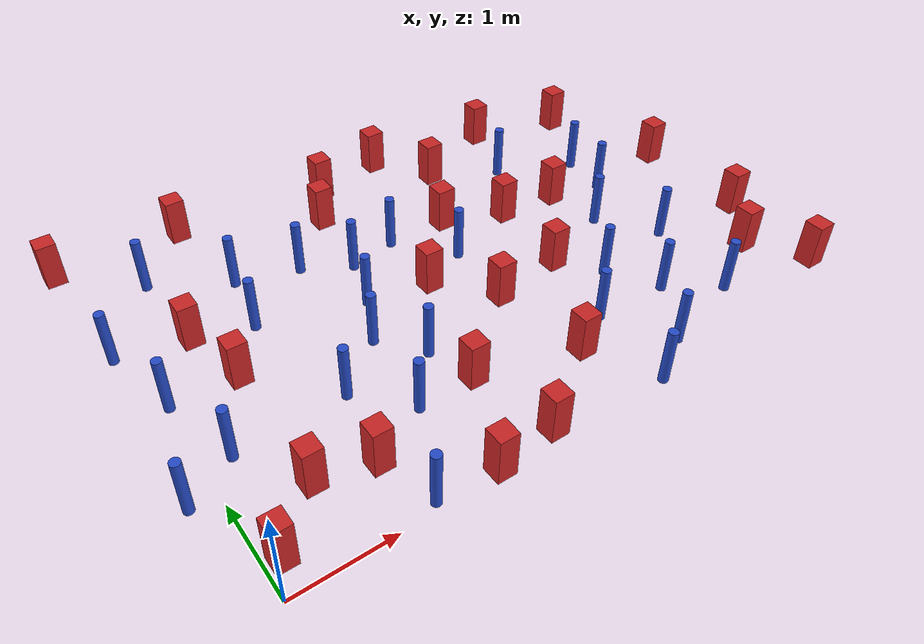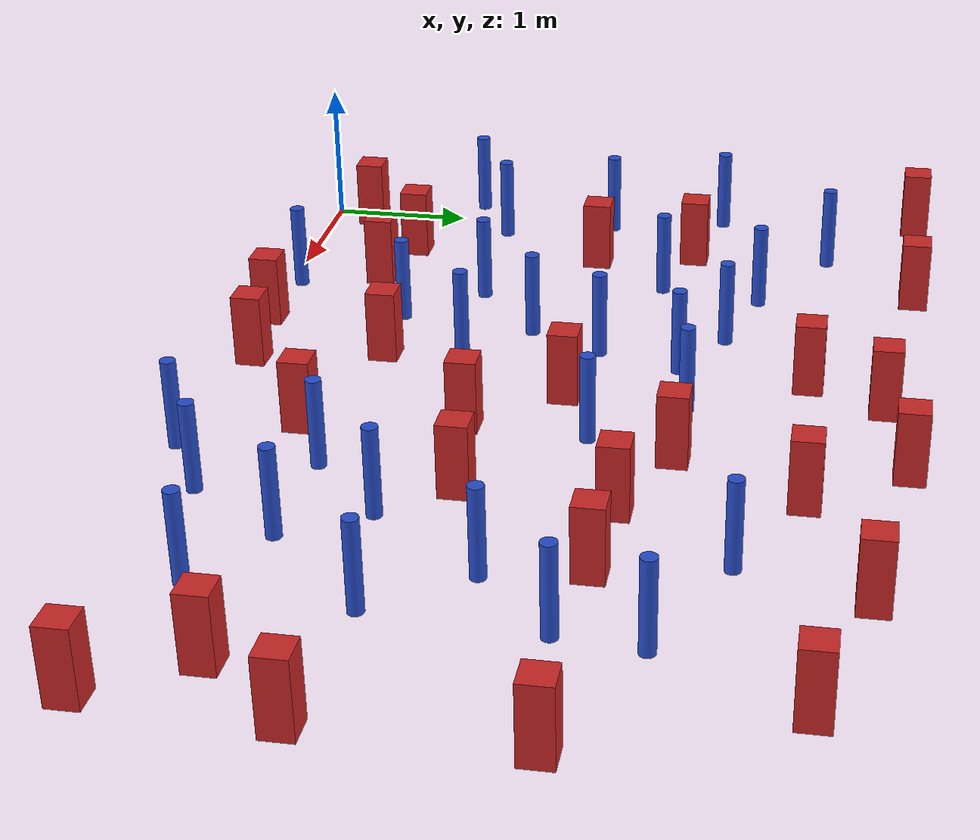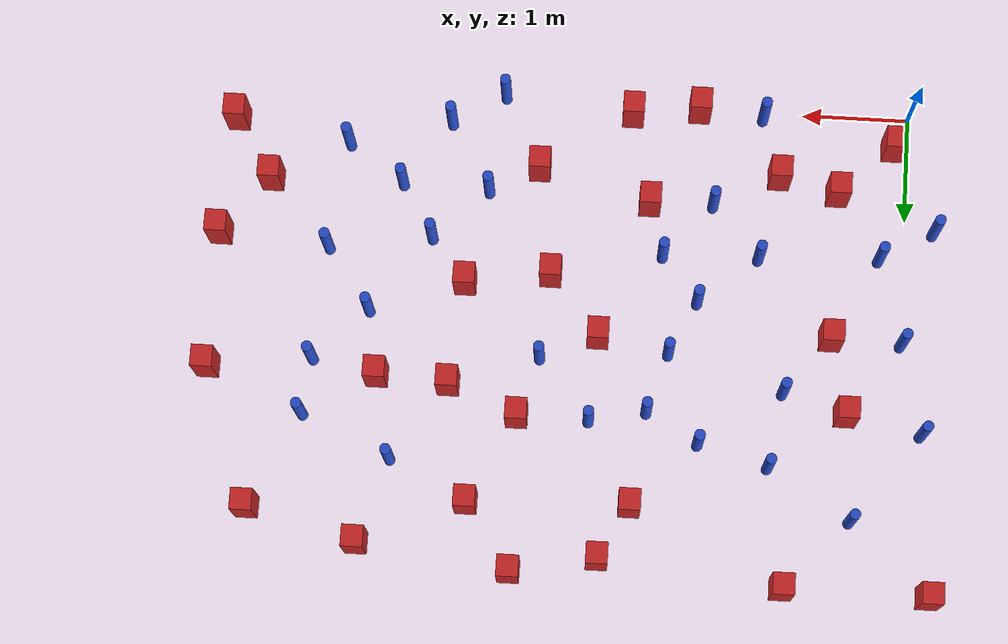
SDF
<sdf version="1.6">
 <model name="dense_81">
  <model name="square_post_obstacle9">
   <static>true</static>
   <pose>3.30981524049 1.72723753832 1.91545236811e-07 -7.35059704564e-06 1.12565212e-07 2.39332434364e-05</pose>
   <link name="link">
    <pose>0 0 0.25 0 -0 0</pose>
    <inertial>
     <mass>100</mass>
     <inertia>
      <ixx>0.166667</ixx>
      <ixy>0</ixy>
      <ixz>0</ixz>
      <iyy>0.166667</iyy>
      <iyz>0</iyz>
      <izz>0.166667</izz>
     </inertia>
    </inertial>
    <collision name="collision"><geometry><box><size>.2 .2 .5</size></box></geometry></collision>
    <visual name="visual">
     <geometry><box><size>.2 .2 .5</size></box></geometry>
     <material>
      <script><name>Gazebo/Red</name><uri>file://media/materials/scripts/gazebo.material</uri></script>
     </material>
    </visual>
   </link>
  </model>
  <model name="square_post_obstacle10">
   <static>true</static>
   <pose>6.36440647438 0.349848405972 1.91545236811e-07 -7.35059704564e-06 1.12565212e-07 2.39332434364e-05</pose>
   <link name="link">
    <pose>0 0 0.25 0 -0 0</pose>
    <inertial>
     <mass>100</mass>
     <inertia>
      <ixx>0.166667</ixx>
      <ixy>0</ixy>
      <ixz>0</ixz>
      <iyy>0.166667</iyy>
      <iyz>0</iyz>
      <izz>0.166667</izz>
     </inertia>
    </inertial>
    <collision name="collision"><geometry><box><size>.2 .2 .5</size></box></geometry></collision>
    <visual name="visual">
     <geometry><box><size>.2 .2 .5</size></box></geometry>
     <material>
      <script><name>Gazebo/Red</name><uri>file://media/materials/scripts/gazebo.material</uri></script>
     </material>
    </visual>
   </link>
  </model>
  <model name="square_post_obstacle15">
   <static>true</static>
   <pose>4.94086010703 4.34586414103 1.91545236811e-07 -7.35059704564e-06 1.12565212e-07 2.39332434364e-05</pose>
   <link name="link">
    <pose>0 0 0.25 0 -0 0</pose>
    <inertial>
     <mass>100</mass>
     <inertia>
      <ixx>0.166667</ixx>
      <ixy>0</ixy>
      <ixz>0</ixz>
      <iyy>0.166667</iyy>
      <iyz>0</iyz>
      <izz>0.166667</izz>
     </inertia>
    </inertial>
    <collision name="collision"><geometry><box><size>.2 .2 .5</size></box></geometry></collision>
    <visual name="visual">
     <geometry><box><size>.2 .2 .5</size></box></geometry>
     <material>
      <script><name>Gazebo/Red</name><uri>file://media/materials/scripts/gazebo.material</uri></script>
     </material>
    </visual>
   </link>
  </model>
  <model name="pole_obstacle23">
   <static>true</static>
   <pose>2.88126556664 3.10218381477 7.38925637345e-09 -8.47170692798e-08 1.24976764939e-08 -1.74513093025e-07</pose>
   <link name="link">
    <pose>0 0 0.3 0 -0 0</pose>
    <inertial>
     <mass>1</mass>
     <inertia><ixx>0.145833</ixx><ixy>0</ixy><ixz>0</ixz><iyy>0.145833</iyy><iyz>0</iyz><izz>0.125</izz></inertia>
    </inertial>
    <collision name="collision">
     <geometry><cylinder><radius>0.05</radius><length>.6</length></cylinder></geometry>
    </collision>
    <visual name="visual">
     <geometry><cylinder><radius>0.05</radius><length>.6</length></cylinder></geometry>
     <material>
      <script><name>Gazebo/Blue</name><uri>file://media/materials/scripts/gazebo.material</uri></script>
     </material>
    </visual>
   </link>
  </model>
  <model name="square_post_obstacle20">
   <static>true</static>
   <pose>2.61789899355 0.109010754113 1.91545236811e-07 -7.35059704564e-06 1.12565212e-07 2.39332434364e-05</pose>
   <link name="link">
    <pose>0 0 0.25 0 -0 0</pose>
    <inertial>
     <mass>100</mass>
     <inertia>
      <ixx>0.166667</ixx>
      <ixy>0</ixy>
      <ixz>0</ixz>
      <iyy>0.166667</iyy>
      <iyz>0</iyz>
      <izz>0.166667</izz>
     </inertia>
    </inertial>
    <collision name="collision"><geometry><box><size>.2 .2 .5</size></box></geometry></collision>
    <visual name="visual">
     <geometry><box><size>.2 .2 .5</size></box></geometry>
     <material>
      <script><name>Gazebo/Red</name><uri>file://media/materials/scripts/gazebo.material</uri></script>
     </material>
    </visual>
   </link>
  </model>
  <model name="pole_obstacle29">
   <static>true</static>
   <pose>1.82015041025 0.966449106147 7.38925637345e-09 -8.47170692799e-08 1.24976765135e-08 -1.74513093013e-07</pose>
   <link name="link">
    <pose>0 0 0.3 0 -0 0</pose>
    <inertial>
     <mass>1</mass>
     <inertia><ixx>0.145833</ixx><ixy>0</ixy><ixz>0</ixz><iyy>0.145833</iyy><iyz>0</iyz><izz>0.125</izz></inertia>
    </inertial>
    <collision name="collision">
     <geometry><cylinder><radius>0.05</radius><length>.6</length></cylinder></geometry>
    </collision>
    <visual name="visual">
     <geometry><cylinder><radius>0.05</radius><length>.6</length></cylinder></geometry>
     <material>
      <script><name>Gazebo/Blue</name><uri>file://media/materials/scripts/gazebo.material</uri></script>
     </material>
    </visual>
   </link>
  </model>
  <model name="pole_obstacle50">
   <static>true</static>
   <pose>0.0156247074044 2.22031036361 7.38925637345e-09 -8.471706928e-08 1.24976765144e-08 -1.74513093012e-07</pose>
   <link name="link">
    <pose>0 0 0.3 0 -0 0</pose>
    <inertial>
     <mass>1</mass>
     <inertia><ixx>0.145833</ixx><ixy>0</ixy><ixz>0</ixz><iyy>0.145833</iyy><iyz>0</iyz><izz>0.125</izz></inertia>
    </inertial>
    <collision name="collision">
     <geometry><cylinder><radius>0.05</radius><length>.6</length></cylinder></geometry>
    </collision>
    <visual name="visual">
     <geometry><cylinder><radius>0.05</radius><length>.6</length></cylinder></geometry>
     <material>
      <script><name>Gazebo/Blue</name><uri>file://media/materials/scripts/gazebo.material</uri></script>
     </material>
    </visual>
   </link>
  </model>
  <model name="square_post_obstacle40">
   <static>true</static>
   <pose>6.44460343799 2.77317127029 1.91545236811e-07 -7.35059704564e-06 1.12565212e-07 2.39332434364e-05</pose>
   <link name="link">
    <pose>0 0 0.25 0 -0 0</pose>
    <inertial>
     <mass>100</mass>
     <inertia>
      <ixx>0.166667</ixx>
      <ixy>0</ixy>
      <ixz>0</ixz>
      <iyy>0.166667</iyy>
      <iyz>0</iyz>
      <izz>0.166667</izz>
     </inertia>
    </inertial>
    <collision name="collision"><geometry><box><size>.2 .2 .5</size></box></geometry></collision>
    <visual name="visual">
     <geometry><box><size>.2 .2 .5</size></box></geometry>
     <material>
      <script><name>Gazebo/Red</name><uri>file://media/materials/scripts/gazebo.material</uri></script>
     </material>
    </visual>
   </link>
  </model>
  <model name="pole_obstacle54">
   <static>true</static>
   <pose>3.36767603161 2.5311120097 7.38925637345e-09 -8.47170692798e-08 1.24976764939e-08 -1.74513093025e-07</pose>
   <link name="link">
    <pose>0 0 0.3 0 -0 0</pose>
    <inertial>
     <mass>1</mass>
     <inertia><ixx>0.145833</ixx><ixy>0</ixy><ixz>0</ixz><iyy>0.145833</iyy><iyz>0</iyz><izz>0.125</izz></inertia>
    </inertial>
    <collision name="collision">
     <geometry><cylinder><radius>0.05</radius><length>.6</length></cylinder></geometry>
    </collision>
    <visual name="visual">
     <geometry><cylinder><radius>0.05</radius><length>.6</length></cylinder></geometry>
     <material>
      <script><name>Gazebo/Blue</name><uri>file://media/materials/scripts/gazebo.material</uri></script>
     </material>
    </visual>
   </link>
  </model>
  <model name="pole_obstacle56">
   <static>true</static>
   <pose>0.244160751125 1.4115101435 7.38925637345e-09 -8.47170692798e-08 1.24976764968e-08 -1.74513093023e-07</pose>
   <link name="link">
    <pose>0 0 0.3 0 -0 0</pose>
    <inertial>
     <mass>1</mass>
     <inertia><ixx>0.145833</ixx><ixy>0</ixy><ixz>0</ixz><iyy>0.145833</iyy><iyz>0</iyz><izz>0.125</izz></inertia>
    </inertial>
    <collision name="collision">
     <geometry><cylinder><radius>0.05</radius><length>.6</length></cylinder></geometry>
    </collision>
    <visual name="visual">
     <geometry><cylinder><radius>0.05</radius><length>.6</length></cylinder></geometry>
     <material>
      <script><name>Gazebo/Blue</name><uri>file://media/materials/scripts/gazebo.material</uri></script>
     </material>
    </visual>
   </link>
  </model>
  <model name="square_post_obstacle47">
   <static>true</static>
   <pose>0.654673824176 0.787150800389 1.91545236811e-07 -7.35059704564e-06 1.12565212e-07 2.39332434364e-05</pose>
   <link name="link">
    <pose>0 0 0.25 0 -0 0</pose>
    <inertial>
     <mass>100</mass>
     <inertia>
      <ixx>0.166667</ixx>
      <ixy>0</ixy>
      <ixz>0</ixz>
      <iyy>0.166667</iyy>
      <iyz>0</iyz>
      <izz>0.166667</izz>
     </inertia>
    </inertial>
    <collision name="collision"><geometry><box><size>.2 .2 .5</size></box></geometry></collision>
    <visual name="visual">
     <geometry><box><size>.2 .2 .5</size></box></geometry>
     <material>
      <script><name>Gazebo/Red</name><uri>file://media/materials/scripts/gazebo.material</uri></script>
     </material>
    </visual>
   </link>
  </model>
  <model name="pole_obstacle64">
   <static>true</static>
   <pose>1.2109681298 3.44647696807 7.38925637345e-09 -8.47170692799e-08 1.24976765053e-08 -1.74513093017e-07</pose>
   <link name="link">
    <pose>0 0 0.3 0 -0 0</pose>
    <inertial>
     <mass>1</mass>
     <inertia><ixx>0.145833</ixx><ixy>0</ixy><ixz>0</ixz><iyy>0.145833</iyy><iyz>0</iyz><izz>0.125</izz></inertia>
    </inertial>
    <collision name="collision">
     <geometry><cylinder><radius>0.05</radius><length>.6</length></cylinder></geometry>
    </collision>
    <visual name="visual">
     <geometry><cylinder><radius>0.05</radius><length>.6</length></cylinder></geometry>
     <material>
      <script><name>Gazebo/Blue</name><uri>file://media/materials/scripts/gazebo.material</uri></script>
     </material>
    </visual>
   </link>
  </model>
  <model name="pole_obstacle65">
   <static>true</static>
   <pose>4.75222611093 0.916089162398 7.38925637345e-09 -8.47170692799e-08 1.24976765038e-08 -1.74513093018e-07</pose>
   <link name="link">
    <pose>0 0 0.3 0 -0 0</pose>
    <inertial>
     <mass>1</mass>
     <inertia><ixx>0.145833</ixx><ixy>0</ixy><ixz>0</ixz><iyy>0.145833</iyy><iyz>0</iyz><izz>0.125</izz></inertia>
    </inertial>
    <collision name="collision">
     <geometry><cylinder><radius>0.05</radius><length>.6</length></cylinder></geometry>
    </collision>
    <visual name="visual">
     <geometry><cylinder><radius>0.05</radius><length>.6</length></cylinder></geometry>
     <material>
      <script><name>Gazebo/Blue</name><uri>file://media/materials/scripts/gazebo.material</uri></script>
     </material>
    </visual>
   </link>
  </model>
  <model name="pole_obstacle66">
   <static>true</static>
   <pose>1.92843310448 1.91794574649 7.38925637345e-09 -8.471706928e-08 1.24976765079e-08 -1.74513093017e-07</pose>
   <link name="link">
    <pose>0 0 0.3 0 -0 0</pose>
    <inertial>
     <mass>1</mass>
     <inertia><ixx>0.145833</ixx><ixy>0</ixy><ixz>0</ixz><iyy>0.145833</iyy><iyz>0</iyz><izz>0.125</izz></inertia>
    </inertial>
    <collision name="collision">
     <geometry><cylinder><radius>0.05</radius><length>.6</length></cylinder></geometry>
    </collision>
    <visual name="visual">
     <geometry><cylinder><radius>0.05</radius><length>.6</length></cylinder></geometry>
     <material>
      <script><name>Gazebo/Blue</name><uri>file://media/materials/scripts/gazebo.material</uri></script>
     </material>
    </visual>
   </link>
  </model>
  <model name="square_post_obstacle51">
   <static>true</static>
   <pose>4.86624607908 2.77830074005 1.91545236811e-07 -7.35059704564e-06 1.12565212e-07 2.39332434364e-05</pose>
   <link name="link">
    <pose>0 0 0.25 0 -0 0</pose>
    <inertial>
     <mass>100</mass>
     <inertia>
      <ixx>0.166667</ixx>
      <ixy>0</ixy>
      <ixz>0</ixz>
      <iyy>0.166667</iyy>
      <iyz>0</iyz>
      <izz>0.166667</izz>
     </inertia>
    </inertial>
    <collision name="collision"><geometry><box><size>.2 .2 .5</size></box></geometry></collision>
    <visual name="visual">
     <geometry><box><size>.2 .2 .5</size></box></geometry>
     <material>
      <script><name>Gazebo/Red</name><uri>file://media/materials/scripts/gazebo.material</uri></script>
     </material>
    </visual>
   </link>
  </model>
  <model name="pole_obstacle77">
   <static>true</static>
   <pose>2.17472826463 2.42791196595 7.38925637345e-09 -8.47170692798e-08 1.24976764939e-08 -1.74513093025e-07</pose>
   <link name="link">
    <pose>0 0 0.3 0 -0 0</pose>
    <inertial>
     <mass>1</mass>
     <inertia><ixx>0.145833</ixx><ixy>0</ixy><ixz>0</ixz><iyy>0.145833</iyy><iyz>0</iyz><izz>0.125</izz></inertia>
    </inertial>
    <collision name="collision">
     <geometry><cylinder><radius>0.05</radius><length>.6</length></cylinder></geometry>
    </collision>
    <visual name="visual">
     <geometry><cylinder><radius>0.05</radius><length>.6</length></cylinder></geometry>
     <material>
      <script><name>Gazebo/Blue</name><uri>file://media/materials/scripts/gazebo.material</uri></script>
     </material>
    </visual>
   </link>
  </model>
  <model name="square_post_obstacle66">
   <static>true</static>
   <pose>0.512603721488 2.9103107442 1.91545236811e-07 -7.35059704564e-06 1.12565212e-07 2.39332434364e-05</pose>
   <link name="link">
    <pose>0 0 0.25 0 -0 0</pose>
    <inertial>
     <mass>100</mass>
     <inertia>
      <ixx>0.166667</ixx>
      <ixy>0</ixy>
      <ixz>0</ixz>
      <iyy>0.166667</iyy>
      <iyz>0</iyz>
      <izz>0.166667</izz>
     </inertia>
    </inertial>
    <collision name="collision"><geometry><box><size>.2 .2 .5</size></box></geometry></collision>
    <visual name="visual">
     <geometry><box><size>.2 .2 .5</size></box></geometry>
     <material>
      <script><name>Gazebo/Red</name><uri>file://media/materials/scripts/gazebo.material</uri></script>
     </material>
    </visual>
   </link>
  </model>
  <model name="pole_obstacle82">
   <static>true</static>
   <pose>3.93563042666 0.946828418988 7.38925637345e-09 -8.471706928e-08 1.24976765177e-08 -1.74513093012e-07</pose>
   <link name="link">
    <pose>0 0 0.3 0 -0 0</pose>
    <inertial>
     <mass>1</mass>
     <inertia><ixx>0.145833</ixx><ixy>0</ixy><ixz>0</ixz><iyy>0.145833</iyy><iyz>0</iyz><izz>0.125</izz></inertia>
    </inertial>
    <collision name="collision">
     <geometry><cylinder><radius>0.05</radius><length>.6</length></cylinder></geometry>
    </collision>
    <visual name="visual">
     <geometry><cylinder><radius>0.05</radius><length>.6</length></cylinder></geometry>
     <material>
      <script><name>Gazebo/Blue</name><uri>file://media/materials/scripts/gazebo.material</uri></script>
     </material>
    </visual>
   </link>
  </model>
  <model name="square_post_obstacle78">
   <static>true</static>
   <pose>1.98698852528 0.033097894392 1.91545236811e-07 -7.35059704564e-06 1.12565212e-07 2.39332434364e-05</pose>
   <link name="link">
    <pose>0 0 0.25 0 -0 0</pose>
    <inertial>
     <mass>100</mass>
     <inertia>
      <ixx>0.166667</ixx>
      <ixy>0</ixy>
      <ixz>0</ixz>
      <iyy>0.166667</iyy>
      <iyz>0</iyz>
      <izz>0.166667</izz>
     </inertia>
    </inertial>
    <collision name="collision"><geometry><box><size>.2 .2 .5</size></box></geometry></collision>
    <visual name="visual">
     <geometry><box><size>.2 .2 .5</size></box></geometry>
     <material>
      <script><name>Gazebo/Red</name><uri>file://media/materials/scripts/gazebo.material</uri></script>
     </material>
    </visual>
   </link>
  </model>
  <model name="square_post_obstacle82">
   <static>true</static>
   <pose>4.19795775018 2.82239375829 1.91545236811e-07 -7.35059704564e-06 1.12565212e-07 2.39332434364e-05</pose>
   <link name="link">
    <pose>0 0 0.25 0 -0 0</pose>
    <inertial>
     <mass>100</mass>
     <inertia>
      <ixx>0.166667</ixx>
      <ixy>0</ixy>
      <ixz>0</ixz>
      <iyy>0.166667</iyy>
      <iyz>0</iyz>
      <izz>0.166667</izz>
     </inertia>
    </inertial>
    <collision name="collision"><geometry><box><size>.2 .2 .5</size></box></geometry></collision>
    <visual name="visual">
     <geometry><box><size>.2 .2 .5</size></box></geometry>
     <material>
      <script><name>Gazebo/Red</name><uri>file://media/materials/scripts/gazebo.material</uri></script>
     </material>
    </visual>
   </link>
  </model>
  <model name="pole_obstacle92">
   <static>true</static>
   <pose>3.83385436151 -0.00392142975081 7.38925637345e-09 -8.47170692801e-08 1.24976765133e-08 -1.74513093014e-07</pose>
   <link name="link">
    <pose>0 0 0.3 0 -0 0</pose>
    <inertial>
     <mass>1</mass>
     <inertia><ixx>0.145833</ixx><ixy>0</ixy><ixz>0</ixz><iyy>0.145833</iyy><iyz>0</iyz><izz>0.125</izz></inertia>
    </inertial>
    <collision name="collision">
     <geometry><cylinder><radius>0.05</radius><length>.6</length></cylinder></geometry>
    </collision>
    <visual name="visual">
     <geometry><cylinder><radius>0.05</radius><length>.6</length></cylinder></geometry>
     <material>
      <script><name>Gazebo/Blue</name><uri>file://media/materials/scripts/gazebo.material</uri></script>
     </material>
    </visual>
   </link>
  </model>
  <model name="pole_obstacle100">
   <static>true</static>
   <pose>5.28343789508 0.550524538946 7.38925637345e-09 -8.47170692799e-08 1.24976765038e-08 -1.74513093018e-07</pose>
   <link name="link">
    <pose>0 0 0.3 0 -0 0</pose>
    <inertial>
     <mass>1</mass>
     <inertia><ixx>0.145833</ixx><ixy>0</ixy><ixz>0</ixz><iyy>0.145833</iyy><iyz>0</iyz><izz>0.125</izz></inertia>
    </inertial>
    <collision name="collision">
     <geometry><cylinder><radius>0.05</radius><length>.6</length></cylinder></geometry>
    </collision>
    <visual name="visual">
     <geometry><cylinder><radius>0.05</radius><length>.6</length></cylinder></geometry>
     <material>
      <script><name>Gazebo/Blue</name><uri>file://media/materials/scripts/gazebo.material</uri></script>
     </material>
    </visual>
   </link>
  </model>
  <model name="pole_obstacle108">
   <static>true</static>
   <pose>5.40565275918 1.57980055018 7.38925637345e-09 -8.471706928e-08 1.24976765134e-08 -1.74513093015e-07</pose>
   <link name="link">
    <pose>0 0 0.3 0 -0 0</pose>
    <inertial>
     <mass>1</mass>
     <inertia><ixx>0.145833</ixx><ixy>0</ixy><ixz>0</ixz><iyy>0.145833</iyy><iyz>0</iyz><izz>0.125</izz></inertia>
    </inertial>
    <collision name="collision">
     <geometry><cylinder><radius>0.05</radius><length>.6</length></cylinder></geometry>
    </collision>
    <visual name="visual">
     <geometry><cylinder><radius>0.05</radius><length>.6</length></cylinder></geometry>
     <material>
      <script><name>Gazebo/Blue</name><uri>file://media/materials/scripts/gazebo.material</uri></script>
     </material>
    </visual>
   </link>
  </model>
  <model name="square_post_obstacle107">
   <static>true</static>
   <pose>2.46405699083 3.86865727719 1.91545236811e-07 -7.35059704564e-06 1.12565212e-07 2.39332434364e-05</pose>
   <link name="link">
    <pose>0 0 0.25 0 -0 0</pose>
    <inertial>
     <mass>100</mass>
     <inertia>
      <ixx>0.166667</ixx>
      <ixy>0</ixy>
      <ixz>0</ixz>
      <iyy>0.166667</iyy>
      <iyz>0</iyz>
      <izz>0.166667</izz>
     </inertia>
    </inertial>
    <collision name="collision"><geometry><box><size>.2 .2 .5</size></box></geometry></collision>
    <visual name="visual">
     <geometry><box><size>.2 .2 .5</size></box></geometry>
     <material>
      <script><name>Gazebo/Red</name><uri>file://media/materials/scripts/gazebo.material</uri></script>
     </material>
    </visual>
   </link>
  </model>
  <model name="pole_obstacle115">
   <static>true</static>
   <pose>5.47574123155 2.65554993993 7.38925637345e-09 -8.47170692798e-08 1.24976764937e-08 -1.74513093023e-07</pose>
   <link name="link">
    <pose>0 0 0.3 0 -0 0</pose>
    <inertial>
     <mass>1</mass>
     <inertia><ixx>0.145833</ixx><ixy>0</ixy><ixz>0</ixz><iyy>0.145833</iyy><iyz>0</iyz><izz>0.125</izz></inertia>
    </inertial>
    <collision name="collision">
     <geometry><cylinder><radius>0.05</radius><length>.6</length></cylinder></geometry>
    </collision>
    <visual name="visual">
     <geometry><cylinder><radius>0.05</radius><length>.6</length></cylinder></geometry>
     <material>
      <script><name>Gazebo/Blue</name><uri>file://media/materials/scripts/gazebo.material</uri></script>
     </material>
    </visual>
   </link>
  </model>
  <model name="pole_obstacle124">
   <static>true</static>
   <pose>4.69202864698 3.55970135627 7.38925637345e-09 -8.47170692798e-08 1.24976764937e-08 -1.74513093023e-07</pose>
   <link name="link">
    <pose>0 0 0.3 0 -0 0</pose>
    <inertial>
     <mass>1</mass>
     <inertia><ixx>0.145833</ixx><ixy>0</ixy><ixz>0</ixz><iyy>0.145833</iyy><iyz>0</iyz><izz>0.125</izz></inertia>
    </inertial>
    <collision name="collision">
     <geometry><cylinder><radius>0.05</radius><length>.6</length></cylinder></geometry>
    </collision>
    <visual name="visual">
     <geometry><cylinder><radius>0.05</radius><length>.6</length></cylinder></geometry>
     <material>
      <script><name>Gazebo/Blue</name><uri>file://media/materials/scripts/gazebo.material</uri></script>
     </material>
    </visual>
   </link>
  </model>
  <model name="pole_obstacle130">
   <static>true</static>
   <pose>1.38130238897 0.0782869861618 7.38925637345e-09 -8.47170692799e-08 1.24976765067e-08 -1.74513093016e-07</pose>
   <link name="link">
    <pose>0 0 0.3 0 -0 0</pose>
    <inertial>
     <mass>1</mass>
     <inertia><ixx>0.145833</ixx><ixy>0</ixy><ixz>0</ixz><iyy>0.145833</iyy><iyz>0</iyz><izz>0.125</izz></inertia>
    </inertial>
    <collision name="collision">
     <geometry><cylinder><radius>0.05</radius><length>.6</length></cylinder></geometry>
    </collision>
    <visual name="visual">
     <geometry><cylinder><radius>0.05</radius><length>.6</length></cylinder></geometry>
     <material>
      <script><name>Gazebo/Blue</name><uri>file://media/materials/scripts/gazebo.material</uri></script>
     </material>
    </visual>
   </link>
  </model>
  <model name="square_post_obstacle126">
   <static>true</static>
   <pose>3.54507340061 3.09247291131 1.91545236811e-07 -7.35059704564e-06 1.12565212e-07 2.39332434364e-05</pose>
   <link name="link">
    <pose>0 0 0.25 0 -0 0</pose>
    <inertial>
     <mass>100</mass>
     <inertia>
      <ixx>0.166667</ixx>
      <ixy>0</ixy>
      <ixz>0</ixz>
      <iyy>0.166667</iyy>
      <iyz>0</iyz>
      <izz>0.166667</izz>
     </inertia>
    </inertial>
    <collision name="collision"><geometry><box><size>.2 .2 .5</size></box></geometry></collision>
    <visual name="visual">
     <geometry><box><size>.2 .2 .5</size></box></geometry>
     <material>
      <script><name>Gazebo/Red</name><uri>file://media/materials/scripts/gazebo.material</uri></script>
     </material>
    </visual>
   </link>
  </model>
  <model name="pole_obstacle133">
   <static>true</static>
   <pose>4.98295653756 2.16622271053 7.38925637345e-09 -8.47170692798e-08 1.24976764937e-08 -1.74513093023e-07</pose>
   <link name="link">
    <pose>0 0 0.3 0 -0 0</pose>
    <inertial>
     <mass>1</mass>
     <inertia><ixx>0.145833</ixx><ixy>0</ixy><ixz>0</ixz><iyy>0.145833</iyy><iyz>0</iyz><izz>0.125</izz></inertia>
    </inertial>
    <collision name="collision">
     <geometry><cylinder><radius>0.05</radius><length>.6</length></cylinder></geometry>
    </collision>
    <visual name="visual">
     <geometry><cylinder><radius>0.05</radius><length>.6</length></cylinder></geometry>
     <material>
      <script><name>Gazebo/Blue</name><uri>file://media/materials/scripts/gazebo.material</uri></script>
     </material>
    </visual>
   </link>
  </model>
  <model name="pole_obstacle140">
   <static>true</static>
   <pose>-0.191825169624 3.06724517902 7.38925637345e-09 -8.471706928e-08 1.2497676511e-08 -1.74513093013e-07</pose>
   <link name="link">
    <pose>0 0 0.3 0 -0 0</pose>
    <inertial>
     <mass>1</mass>
     <inertia><ixx>0.145833</ixx><ixy>0</ixy><ixz>0</ixz><iyy>0.145833</iyy><iyz>0</iyz><izz>0.125</izz></inertia>
    </inertial>
    <collision name="collision">
     <geometry><cylinder><radius>0.05</radius><length>.6</length></cylinder></geometry>
    </collision>
    <visual name="visual">
     <geometry><cylinder><radius>0.05</radius><length>.6</length></cylinder></geometry>
     <material>
      <script><name>Gazebo/Blue</name><uri>file://media/materials/scripts/gazebo.material</uri></script>
     </material>
    </visual>
   </link>
  </model>
  <model name="square_post_obstacle137">
   <static>true</static>
   <pose>-0.289209760316 4.55991322727 1.91545236811e-07 -7.35059704564e-06 1.12565212e-07 2.39332434364e-05</pose>
   <link name="link">
    <pose>0 0 0.25 0 -0 0</pose>
    <inertial>
     <mass>100</mass>
     <inertia>
      <ixx>0.166667</ixx>
      <ixy>0</ixy>
      <ixz>0</ixz>
      <iyy>0.166667</iyy>
      <iyz>0</iyz>
      <izz>0.166667</izz>
     </inertia>
    </inertial>
    <collision name="collision"><geometry><box><size>.2 .2 .5</size></box></geometry></collision>
    <visual name="visual">
     <geometry><box><size>.2 .2 .5</size></box></geometry>
     <material>
      <script><name>Gazebo/Red</name><uri>file://media/materials/scripts/gazebo.material</uri></script>
     </material>
    </visual>
   </link>
  </model>
  <model name="square_post_obstacle138">
   <static>true</static>
   <pose>1.20854773209 0.653829826406 1.91545236811e-07 -7.35059704564e-06 1.12565212e-07 2.39332434364e-05</pose>
   <link name="link">
    <pose>0 0 0.25 0 -0 0</pose>
    <inertial>
     <mass>100</mass>
     <inertia>
      <ixx>0.166667</ixx>
      <ixy>0</ixy>
      <ixz>0</ixz>
      <iyy>0.166667</iyy>
      <iyz>0</iyz>
      <izz>0.166667</izz>
     </inertia>
    </inertial>
    <collision name="collision"><geometry><box><size>.2 .2 .5</size></box></geometry></collision>
    <visual name="visual">
     <geometry><box><size>.2 .2 .5</size></box></geometry>
     <material>
      <script><name>Gazebo/Red</name><uri>file://media/materials/scripts/gazebo.material</uri></script>
     </material>
    </visual>
   </link>
  </model>
  <model name="pole_obstacle146">
   <static>true</static>
   <pose>1.86385830138 3.26484523695 7.38925637345e-09 -8.47170692799e-08 1.24976765053e-08 -1.74513093017e-07</pose>
   <link name="link">
    <pose>0 0 0.3 0 -0 0</pose>
    <inertial>
     <mass>1</mass>
     <inertia><ixx>0.145833</ixx><ixy>0</ixy><ixz>0</ixz><iyy>0.145833</iyy><iyz>0</iyz><izz>0.125</izz></inertia>
    </inertial>
    <collision name="collision">
     <geometry><cylinder><radius>0.05</radius><length>.6</length></cylinder></geometry>
    </collision>
    <visual name="visual">
     <geometry><cylinder><radius>0.05</radius><length>.6</length></cylinder></geometry>
     <material>
      <script><name>Gazebo/Blue</name><uri>file://media/materials/scripts/gazebo.material</uri></script>
     </material>
    </visual>
   </link>
  </model>
  <model name="pole_obstacle148">
   <static>true</static>
   <pose>0.442712913147 3.90780176301 7.38925637345e-09 -8.471706928e-08 1.24976765084e-08 -1.74513093017e-07</pose>
   <link name="link">
    <pose>0 0 0.3 0 -0 0</pose>
    <inertial>
     <mass>1</mass>
     <inertia><ixx>0.145833</ixx><ixy>0</ixy><ixz>0</ixz><iyy>0.145833</iyy><iyz>0</iyz><izz>0.125</izz></inertia>
    </inertial>
    <collision name="collision">
     <geometry><cylinder><radius>0.05</radius><length>.6</length></cylinder></geometry>
    </collision>
    <visual name="visual">
     <geometry><cylinder><radius>0.05</radius><length>.6</length></cylinder></geometry>
     <material>
      <script><name>Gazebo/Blue</name><uri>file://media/materials/scripts/gazebo.material</uri></script>
     </material>
    </visual>
   </link>
  </model>
  <model name="square_post_obstacle147">
   <static>true</static>
   <pose>5.96679147998 4.07127458139 1.91545236811e-07 -7.35059704564e-06 1.12565212e-07 2.39332434364e-05</pose>
   <link name="link">
    <pose>0 0 0.25 0 -0 0</pose>
    <inertial>
     <mass>100</mass>
     <inertia>
      <ixx>0.166667</ixx>
      <ixy>0</ixy>
      <ixz>0</ixz>
      <iyy>0.166667</iyy>
      <iyz>0</iyz>
      <izz>0.166667</izz>
     </inertia>
    </inertial>
    <collision name="collision"><geometry><box><size>.2 .2 .5</size></box></geometry></collision>
    <visual name="visual">
     <geometry><box><size>.2 .2 .5</size></box></geometry>
     <material>
      <script><name>Gazebo/Red</name><uri>file://media/materials/scripts/gazebo.material</uri></script>
     </material>
    </visual>
   </link>
  </model>
  <model name="square_post_obstacle149">
   <static>true</static>
   <pose>5.99089258848 0.931292589408 1.91545236811e-07 -7.35059704564e-06 1.12565212e-07 2.39332434364e-05</pose>
   <link name="link">
    <pose>0 0 0.25 0 -0 0</pose>
    <inertial>
     <mass>100</mass>
     <inertia>
      <ixx>0.166667</ixx>
      <ixy>0</ixy>
      <ixz>0</ixz>
      <iyy>0.166667</iyy>
      <iyz>0</iyz>
      <izz>0.166667</izz>
     </inertia>
    </inertial>
    <collision name="collision"><geometry><box><size>.2 .2 .5</size></box></geometry></collision>
    <visual name="visual">
     <geometry><box><size>.2 .2 .5</size></box></geometry>
     <material>
      <script><name>Gazebo/Red</name><uri>file://media/materials/scripts/gazebo.material</uri></script>
     </material>
    </visual>
   </link>
  </model>
  <model name="pole_obstacle161">
   <static>true</static>
   <pose>1.09783759677 2.7391970682 7.38925637345e-09 -8.47170692799e-08 1.24976765053e-08 -1.74513093017e-07</pose>
   <link name="link">
    <pose>0 0 0.3 0 -0 0</pose>
    <inertial>
     <mass>1</mass>
     <inertia><ixx>0.145833</ixx><ixy>0</ixy><ixz>0</ixz><iyy>0.145833</iyy><iyz>0</iyz><izz>0.125</izz></inertia>
    </inertial>
    <collision name="collision">
     <geometry><cylinder><radius>0.05</radius><length>.6</length></cylinder></geometry>
    </collision>
    <visual name="visual">
     <geometry><cylinder><radius>0.05</radius><length>.6</length></cylinder></geometry>
     <material>
      <script><name>Gazebo/Blue</name><uri>file://media/materials/scripts/gazebo.material</uri></script>
     </material>
    </visual>
   </link>
  </model>
  <model name="square_post_obstacle154">
   <static>true</static>
   <pose>1.04767736695 4.55188773052 1.91545236811e-07 -7.35059704564e-06 1.12565212e-07 2.39332434364e-05</pose>
   <link name="link">
    <pose>0 0 0.25 0 -0 0</pose>
    <inertial>
     <mass>100</mass>
     <inertia>
      <ixx>0.166667</ixx>
      <ixy>0</ixy>
      <ixz>0</ixz>
      <iyy>0.166667</iyy>
      <iyz>0</iyz>
      <izz>0.166667</izz>
     </inertia>
    </inertial>
    <collision name="collision"><geometry><box><size>.2 .2 .5</size></box></geometry></collision>
    <visual name="visual">
     <geometry><box><size>.2 .2 .5</size></box></geometry>
     <material>
      <script><name>Gazebo/Red</name><uri>file://media/materials/scripts/gazebo.material</uri></script>
     </material>
    </visual>
   </link>
  </model>
  <model name="pole_obstacle169">
   <static>true</static>
   <pose>2.27233535893 1.48550547574 7.38925637345e-09 -8.471706928e-08 1.24976765152e-08 -1.74513093012e-07</pose>
   <link name="link">
    <pose>0 0 0.3 0 -0 0</pose>
    <inertial>
     <mass>1</mass>
     <inertia><ixx>0.145833</ixx><ixy>0</ixy><ixz>0</ixz><iyy>0.145833</iyy><iyz>0</iyz><izz>0.125</izz></inertia>
    </inertial>
    <collision name="collision">
     <geometry><cylinder><radius>0.05</radius><length>.6</length></cylinder></geometry>
    </collision>
    <visual name="visual">
     <geometry><cylinder><radius>0.05</radius><length>.6</length></cylinder></geometry>
     <material>
      <script><name>Gazebo/Blue</name><uri>file://media/materials/scripts/gazebo.material</uri></script>
     </material>
    </visual>
   </link>
  </model>
  <model name="square_post_obstacle169">
   <static>true</static>
   <pose>3.9601357315 3.92242300364 1.91545236811e-07 -7.35059704564e-06 1.12565212e-07 2.39332434364e-05</pose>
   <link name="link">
    <pose>0 0 0.25 0 -0 0</pose>
    <inertial>
     <mass>100</mass>
     <inertia>
      <ixx>0.166667</ixx>
      <ixy>0</ixy>
      <ixz>0</ixz>
      <iyy>0.166667</iyy>
      <iyz>0</iyz>
      <izz>0.166667</izz>
     </inertia>
    </inertial>
    <collision name="collision"><geometry><box><size>.2 .2 .5</size></box></geometry></collision>
    <visual name="visual">
     <geometry><box><size>.2 .2 .5</size></box></geometry>
     <material>
      <script><name>Gazebo/Red</name><uri>file://media/materials/scripts/gazebo.material</uri></script>
     </material>
    </visual>
   </link>
  </model>
  <model name="pole_obstacle173">
   <static>true</static>
   <pose>5.5318144581 3.18457841593 7.38925637345e-09 -8.47170692798e-08 1.24976764937e-08 -1.74513093023e-07</pose>
   <link name="link">
    <pose>0 0 0.3 0 -0 0</pose>
    <inertial>
     <mass>1</mass>
     <inertia><ixx>0.145833</ixx><ixy>0</ixy><ixz>0</ixz><iyy>0.145833</iyy><iyz>0</iyz><izz>0.125</izz></inertia>
    </inertial>
    <collision name="collision">
     <geometry><cylinder><radius>0.05</radius><length>.6</length></cylinder></geometry>
    </collision>
    <visual name="visual">
     <geometry><cylinder><radius>0.05</radius><length>.6</length></cylinder></geometry>
     <material>
      <script><name>Gazebo/Blue</name><uri>file://media/materials/scripts/gazebo.material</uri></script>
     </material>
    </visual>
   </link>
  </model>
  <model name="square_post_obstacle172">
   <static>true</static>
   <pose>4.10298631683 1.84876126198 1.91545236811e-07 -7.35059704564e-06 1.12565212e-07 2.39332434364e-05</pose>
   <link name="link">
    <pose>0 0 0.25 0 -0 0</pose>
    <inertial>
     <mass>100</mass>
     <inertia>
      <ixx>0.166667</ixx>
      <ixy>0</ixy>
      <ixz>0</ixz>
      <iyy>0.166667</iyy>
      <iyz>0</iyz>
      <izz>0.166667</izz>
     </inertia>
    </inertial>
    <collision name="collision"><geometry><box><size>.2 .2 .5</size></box></geometry></collision>
    <visual name="visual">
     <geometry><box><size>.2 .2 .5</size></box></geometry>
     <material>
      <script><name>Gazebo/Red</name><uri>file://media/materials/scripts/gazebo.material</uri></script>
     </material>
    </visual>
   </link>
  </model>
  <model name="pole_obstacle175">
   <static>true</static>
   <pose>1.37301164198 1.46212770438 7.38925637345e-09 -8.471706928e-08 1.24976765079e-08 -1.74513093017e-07</pose>
   <link name="link">
    <pose>0 0 0.3 0 -0 0</pose>
    <inertial>
     <mass>1</mass>
     <inertia><ixx>0.145833</ixx><ixy>0</ixy><ixz>0</ixz><iyy>0.145833</iyy><iyz>0</iyz><izz>0.125</izz></inertia>
    </inertial>
    <collision name="collision">
     <geometry><cylinder><radius>0.05</radius><length>.6</length></cylinder></geometry>
    </collision>
    <visual name="visual">
     <geometry><cylinder><radius>0.05</radius><length>.6</length></cylinder></geometry>
     <material>
      <script><name>Gazebo/Blue</name><uri>file://media/materials/scripts/gazebo.material</uri></script>
     </material>
    </visual>
   </link>
  </model>
  <model name="square_post_obstacle175">
   <static>true</static>
   <pose>6.43571907906 1.48435942812 1.91545236811e-07 -7.35059704564e-06 1.12565212e-07 2.39332434364e-05</pose>
   <link name="link">
    <pose>0 0 0.25 0 -0 0</pose>
    <inertial>
     <mass>100</mass>
     <inertia>
      <ixx>0.166667</ixx>
      <ixy>0</ixy>
      <ixz>0</ixz>
      <iyy>0.166667</iyy>
      <iyz>0</iyz>
      <izz>0.166667</izz>
     </inertia>
    </inertial>
    <collision name="collision"><geometry><box><size>.2 .2 .5</size></box></geometry></collision>
    <visual name="visual">
     <geometry><box><size>.2 .2 .5</size></box></geometry>
     <material>
      <script><name>Gazebo/Red</name><uri>file://media/materials/scripts/gazebo.material</uri></script>
     </material>
    </visual>
   </link>
  </model>
  <model name="square_post_obstacle177">
   <static>true</static>
   <pose>2.83604754993 2.29668768768 1.91545236811e-07 -7.35059704564e-06 1.12565212e-07 2.39332434364e-05</pose>
   <link name="link">
    <pose>0 0 0.25 0 -0 0</pose>
    <inertial>
     <mass>100</mass>
     <inertia>
      <ixx>0.166667</ixx>
      <ixy>0</ixy>
      <ixz>0</ixz>
      <iyy>0.166667</iyy>
      <iyz>0</iyz>
      <izz>0.166667</izz>
     </inertia>
    </inertial>
    <collision name="collision"><geometry><box><size>.2 .2 .5</size></box></geometry></collision>
    <visual name="visual">
     <geometry><box><size>.2 .2 .5</size></box></geometry>
     <material>
      <script><name>Gazebo/Red</name><uri>file://media/materials/scripts/gazebo.material</uri></script>
     </material>
    </visual>
   </link>
  </model>
  <model name="pole_obstacle181">
   <static>true</static>
   <pose>2.35123985417 2.99011710825 7.38925637345e-09 -8.47170692798e-08 1.24976764939e-08 -1.74513093025e-07</pose>
   <link name="link">
    <pose>0 0 0.3 0 -0 0</pose>
    <inertial>
     <mass>1</mass>
     <inertia><ixx>0.145833</ixx><ixy>0</ixy><ixz>0</ixz><iyy>0.145833</iyy><iyz>0</iyz><izz>0.125</izz></inertia>
    </inertial>
    <collision name="collision">
     <geometry><cylinder><radius>0.05</radius><length>.6</length></cylinder></geometry>
    </collision>
    <visual name="visual">
     <geometry><cylinder><radius>0.05</radius><length>.6</length></cylinder></geometry>
     <material>
      <script><name>Gazebo/Blue</name><uri>file://media/materials/scripts/gazebo.material</uri></script>
     </material>
    </visual>
   </link>
  </model>
  <model name="square_post_obstacle185">
   <static>true</static>
   <pose>0.675105124929 2.19641881093 1.91545236811e-07 -7.35059704564e-06 1.12565212e-07 2.39332434364e-05</pose>
   <link name="link">
    <pose>0 0 0.25 0 -0 0</pose>
    <inertial>
     <mass>100</mass>
     <inertia>
      <ixx>0.166667</ixx>
      <ixy>0</ixy>
      <ixz>0</ixz>
      <iyy>0.166667</iyy>
      <iyz>0</iyz>
      <izz>0.166667</izz>
     </inertia>
    </inertial>
    <collision name="collision"><geometry><box><size>.2 .2 .5</size></box></geometry></collision>
    <visual name="visual">
     <geometry><box><size>.2 .2 .5</size></box></geometry>
     <material>
      <script><name>Gazebo/Red</name><uri>file://media/materials/scripts/gazebo.material</uri></script>
     </material>
    </visual>
   </link>
  </model>
  <model name="square_post_obstacle191">
   <static>true</static>
   <pose>3.53058065706 4.53478869564 1.91545236811e-07 -7.35059704564e-06 1.12565212e-07 2.39332434364e-05</pose>
   <link name="link">
    <pose>0 0 0.25 0 -0 0</pose>
    <inertial>
     <mass>100</mass>
     <inertia>
      <ixx>0.166667</ixx>
      <ixy>0</ixy>
      <ixz>0</ixz>
      <iyy>0.166667</iyy>
      <iyz>0</iyz>
      <izz>0.166667</izz>
     </inertia>
    </inertial>
    <collision name="collision"><geometry><box><size>.2 .2 .5</size></box></geometry></collision>
    <visual name="visual">
     <geometry><box><size>.2 .2 .5</size></box></geometry>
     <material>
      <script><name>Gazebo/Red</name><uri>file://media/materials/scripts/gazebo.material</uri></script>
     </material>
    </visual>
   </link>
  </model>
  <model name="square_post_obstacle192">
   <static>true</static>
   <pose>0.142309378813 0.309802152182 1.91545236811e-07 -7.35059704564e-06 1.12565212e-07 2.39332434364e-05</pose>
   <link name="link">
    <pose>0 0 0.25 0 -0 0</pose>
    <inertial>
     <mass>100</mass>
     <inertia>
      <ixx>0.166667</ixx>
      <ixy>0</ixy>
      <ixz>0</ixz>
      <iyy>0.166667</iyy>
      <iyz>0</iyz>
      <izz>0.166667</izz>
     </inertia>
    </inertial>
    <collision name="collision"><geometry><box><size>.2 .2 .5</size></box></geometry></collision>
    <visual name="visual">
     <geometry><box><size>.2 .2 .5</size></box></geometry>
     <material>
      <script><name>Gazebo/Red</name><uri>file://media/materials/scripts/gazebo.material</uri></script>
     </material>
    </visual>
   </link>
  </model>
  <model name="pole_obstacle198">
   <static>true</static>
   <pose>4.32836339891 0.288305664324 7.38925637345e-09 -8.47170692799e-08 1.24976765028e-08 -1.74513093019e-07</pose>
   <link name="link">
    <pose>0 0 0.3 0 -0 0</pose>
    <inertial>
     <mass>1</mass>
     <inertia><ixx>0.145833</ixx><ixy>0</ixy><ixz>0</ixz><iyy>0.145833</iyy><iyz>0</iyz><izz>0.125</izz></inertia>
    </inertial>
    <collision name="collision">
     <geometry><cylinder><radius>0.05</radius><length>.6</length></cylinder></geometry>
    </collision>
    <visual name="visual">
     <geometry><cylinder><radius>0.05</radius><length>.6</length></cylinder></geometry>
     <material>
      <script><name>Gazebo/Blue</name><uri>file://media/materials/scripts/gazebo.material</uri></script>
     </material>
    </visual>
   </link>
  </model>
  <model name="pole_obstacle200">
   <static>true</static>
   <pose>-0.260572743903 1.12611606704 7.38925637345e-09 -8.471706928e-08 1.24976765077e-08 -1.74513093016e-07</pose>
   <link name="link">
    <pose>0 0 0.3 0 -0 0</pose>
    <inertial>
     <mass>1</mass>
     <inertia><ixx>0.145833</ixx><ixy>0</ixy><ixz>0</ixz><iyy>0.145833</iyy><iyz>0</iyz><izz>0.125</izz></inertia>
    </inertial>
    <collision name="collision">
     <geometry><cylinder><radius>0.05</radius><length>.6</length></cylinder></geometry>
    </collision>
    <visual name="visual">
     <geometry><cylinder><radius>0.05</radius><length>.6</length></cylinder></geometry>
     <material>
      <script><name>Gazebo/Blue</name><uri>file://media/materials/scripts/gazebo.material</uri></script>
     </material>
    </visual>
   </link>
  </model>
  <model name="pole_obstacle201">
   <static>true</static>
   <pose>4.44161592882 1.43014429339 7.38925637345e-09 -8.471706928e-08 1.24976765134e-08 -1.74513093015e-07</pose>
   <link name="link">
    <pose>0 0 0.3 0 -0 0</pose>
    <inertial>
     <mass>1</mass>
     <inertia><ixx>0.145833</ixx><ixy>0</ixy><ixz>0</ixz><iyy>0.145833</iyy><iyz>0</iyz><izz>0.125</izz></inertia>
    </inertial>
    <collision name="collision">
     <geometry><cylinder><radius>0.05</radius><length>.6</length></cylinder></geometry>
    </collision>
    <visual name="visual">
     <geometry><cylinder><radius>0.05</radius><length>.6</length></cylinder></geometry>
     <material>
      <script><name>Gazebo/Blue</name><uri>file://media/materials/scripts/gazebo.material</uri></script>
     </material>
    </visual>
   </link>
  </model>
  <model name="square_post_obstacle208">
   <static>true</static>
   <pose>2.73488946011 4.37147517957 1.91545236811e-07 -7.35059704564e-06 1.12565212e-07 2.39332434364e-05</pose>
   <link name="link">
    <pose>0 0 0.25 0 -0 0</pose>
    <inertial>
     <mass>100</mass>
     <inertia>
      <ixx>0.166667</ixx>
      <ixy>0</ixy>
      <ixz>0</ixz>
      <iyy>0.166667</iyy>
      <iyz>0</iyz>
      <izz>0.166667</izz>
     </inertia>
    </inertial>
    <collision name="collision"><geometry><box><size>.2 .2 .5</size></box></geometry></collision>
    <visual name="visual">
     <geometry><box><size>.2 .2 .5</size></box></geometry>
     <material>
      <script><name>Gazebo/Red</name><uri>file://media/materials/scripts/gazebo.material</uri></script>
     </material>
    </visual>
   </link>
  </model>
  <model name="square_post_obstacle210">
   <static>true</static>
   <pose>2.41800383032 0.98227756073 1.91545236811e-07 -7.35059704564e-06 1.12565212e-07 2.39332434364e-05</pose>
   <link name="link">
    <pose>0 0 0.25 0 -0 0</pose>
    <inertial>
     <mass>100</mass>
     <inertia>
      <ixx>0.166667</ixx>
      <ixy>0</ixy>
      <ixz>0</ixz>
      <iyy>0.166667</iyy>
      <iyz>0</iyz>
      <izz>0.166667</izz>
     </inertia>
    </inertial>
    <collision name="collision"><geometry><box><size>.2 .2 .5</size></box></geometry></collision>
    <visual name="visual">
     <geometry><box><size>.2 .2 .5</size></box></geometry>
     <material>
      <script><name>Gazebo/Red</name><uri>file://media/materials/scripts/gazebo.material</uri></script>
     </material>
    </visual>
   </link>
  </model>
  <model name="square_post_obstacle223">
   <static>true</static>
   <pose>3.47098171475 0.696925978285 1.91545236811e-07 -7.35059704564e-06 1.12565212e-07 2.39332434364e-05</pose>
   <link name="link">
    <pose>0 0 0.25 0 -0 0</pose>
    <inertial>
     <mass>100</mass>
     <inertia>
      <ixx>0.166667</ixx>
      <ixy>0</ixy>
      <ixz>0</ixz>
      <iyy>0.166667</iyy>
      <iyz>0</iyz>
      <izz>0.166667</izz>
     </inertia>
    </inertial>
    <collision name="collision"><geometry><box><size>.2 .2 .5</size></box></geometry></collision>
    <visual name="visual">
     <geometry><box><size>.2 .2 .5</size></box></geometry>
     <material>
      <script><name>Gazebo/Red</name><uri>file://media/materials/scripts/gazebo.material</uri></script>
     </material>
    </visual>
   </link>
  </model>
 </model>
</sdf>
